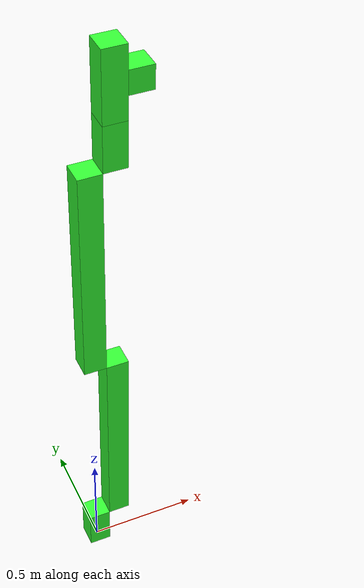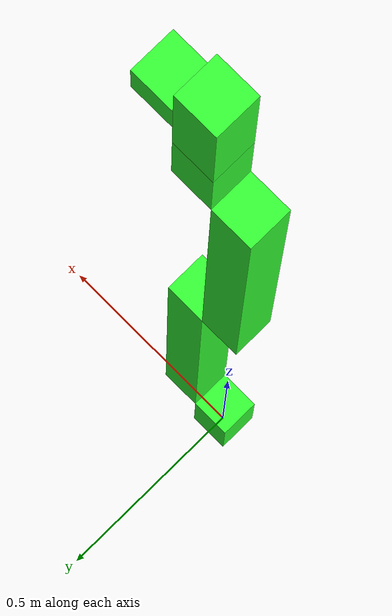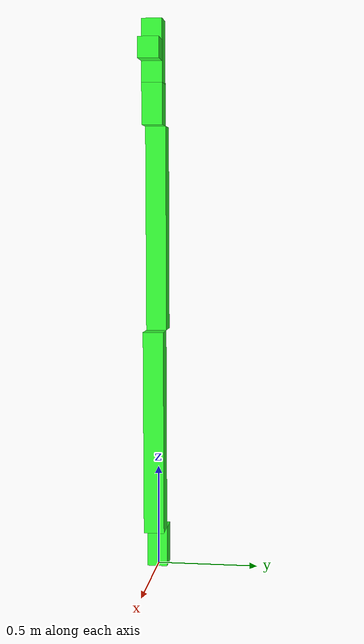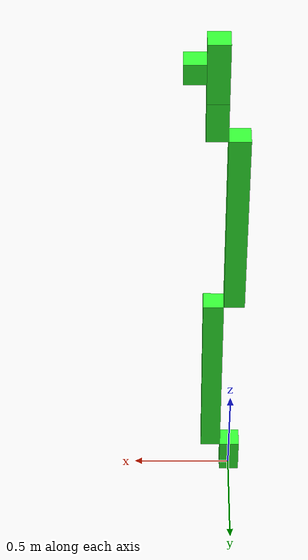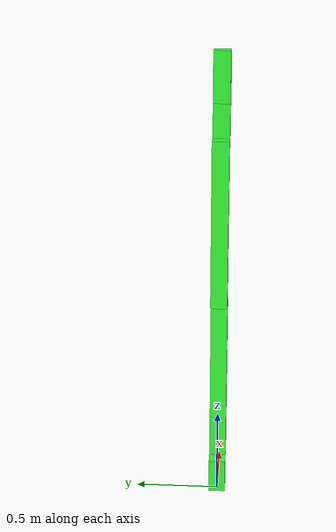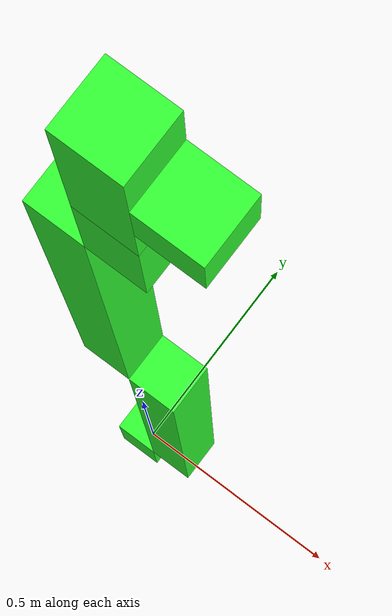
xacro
<?xml version="1.0"?>
<robot xmlns:xacro="http://www.ros.org/wiki/xacro"  name="robot">

    <!-- Include macro for creating urdf -->
    <xacro:include filename="robot_basic_urdf.xacro" />

    <!-- Set arguments for macro -->
    <xacro:arg name="robot_name" default=""/>

    <!-- Create link for robot base to connect to -->
    <link name="world"/>

    <!-- Use macro to make urdf -->
    <xacro:create_robot parent="world" robot_name="$(arg robot_name)" />

</robot>

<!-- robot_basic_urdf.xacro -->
<robot xmlns:xacro="http://www.ros.org/wiki/xacro"  name="robot">

    <!-- Constants of the robot dimensions, should be made to variables -->
    <xacro:property name="link_1_length" value="0.2" />
    <xacro:property name="link_1_side" value="0.1" />
    <xacro:property name="link_2_length" value="1" />
    <xacro:property name="link_2_side" value="0.1" />
    <xacro:property name="link_3_length" value="1" />
    <xacro:property name="link_3_side" value="0.1" />
    <xacro:property name="link_4_length" value="0.2" />
    <xacro:property name="link_4_side" value="0.1" />
    <xacro:property name="link_5_length" value="0.3" />
    <xacro:property name="link_5_side" value="0.1" />
    <xacro:property name="link_6_length" value="0.1" />
    <xacro:property name="link_6_side" value="0.1" />
    <!-- Constants of the robot -->
    <xacro:property name="joint_damping" value="10.0"/>
    <xacro:property name="joint_friction" value="0.1"/>
    <xacro:property name="max_effort" value="300"/>
    <xacro:property name="max_velocity" value="10"/>

    <!-- Includes -->
    <xacro:include filename="robot_materials.xacro" />
    <xacro:include filename="robot_inertia_functions.xacro" />
    <xacro:include filename="robot.gazebo.xacro" />
    <xacro:include filename="robot.ros2_control.xacro" />

    <!-- macro for create URDF -->
    <xacro:macro name="create_robot" params="parent:=|world robot_name:=^|robot">

        <!-- Joint between parent and base link -->
        <joint name="${parent}_${robot_name}_joint" type="fixed">
            <parent link="${parent}"/>
            <child link="${robot_name}_link_0"/>
        </joint>

        <!-- Joints in the robot -->
        <joint name="${robot_name}_joint_1" type="revolute">
            <origin xyz="0 0 0" rpy="0 0 0"/>
            <parent link="${robot_name}_link_0"/>
            <child link="${robot_name}_link_1"/>
            <axis xyz="0 0 1"/>
            <limit lower="${-pi}" upper="${pi}" velocity="${max_velocity}" effort="${max_effort}"/>
            <dynamics damping="${joint_damping}" friction="${joint_friction}"/>
        </joint>

        <joint name="${robot_name}_joint_2" type="revolute">
            <origin xyz="${(link_2_side/2)+(link_1_side/2)} 0 ${link_1_length}" rpy="0 0 0"/>
            <parent link="${robot_name}_link_1"/>
            <child link="${robot_name}_link_2"/>
            <axis xyz="1 0 0"/>
            <limit lower="${-pi}" upper="${pi}" velocity="${max_velocity}" effort="${max_effort}"/>
            <dynamics damping="${joint_damping}" friction="${joint_friction}"/>
        </joint>

        <joint name="${robot_name}_joint_3" type="revolute">
            <origin xyz="${-((link_3_side/2)+(link_2_side/2))} 0 ${link_2_length}" rpy="0 0 0"/>
            <parent link="${robot_name}_link_2"/>
            <child link="${robot_name}_link_3"/>
            <axis xyz="1 0 0"/>
            <limit lower="${-pi}" upper="${pi}" velocity="${max_velocity}" effort="${max_effort}"/>
            <dynamics damping="${joint_damping}" friction="${joint_friction}"/>
        </joint>

        <joint name="${robot_name}_joint_4" type="revolute">
            <origin xyz="${(link_4_side/2)+(link_3_side/2)} 0 ${link_3_length}" rpy="0 0 0"/>
            <parent link="${robot_name}_link_3"/>
            <child link="${robot_name}_link_4"/>
            <axis xyz="1 0 0"/>
            <limit lower="${-pi}" upper="${pi}" velocity="${max_velocity}" effort="${max_effort}"/>
            <dynamics damping="${joint_damping}" friction="${joint_friction}"/>
        </joint>

        <joint name="${robot_name}_joint_5" type="revolute">
            <origin xyz="0 0 ${link_4_length}" rpy="0 0 0"/>
            <parent link="${robot_name}_link_4"/>
            <child link="${robot_name}_link_5"/>
            <axis xyz="0 0 1"/>
            <limit lower="${-pi}" upper="${pi}" velocity="${max_velocity}" effort="${max_effort}"/>
            <dynamics damping="${joint_damping}" friction="${joint_friction}"/>
        </joint>

        <joint name="${robot_name}_joint_6" type="revolute">
            <origin xyz="${link_5_side/2} 0 ${link_5_length / 2}" rpy="0 0 0"/>
            <parent link="${robot_name}_link_5"/>
            <child link="${robot_name}_link_6"/>
            <axis xyz="1 0 0"/>
            <limit lower="${-pi}" upper="${pi}" velocity="${max_velocity}" effort="${max_effort}"/>
            <dynamics damping="${joint_damping}" friction="${joint_friction}"/>
        </joint>

        <!-- Links in the robot -->
        <link name="${robot_name}_link_0"></link>

        <link name="${robot_name}_link_1">
            <visual>
                <origin xyz="0 0 ${link_1_length / 2}" rpy="0 0 0" />
                <geometry>
                    <box size="${link_1_side} ${link_1_side} ${link_1_length}" />
                </geometry>
                <material name="green" />
            </visual>
            <collision>
                <origin xyz="0 0 ${link_1_length / 2}" rpy="0 0 0" />
                <geometry>
                    <box size="${link_1_side} ${link_1_side} ${link_1_length}" />
                </geometry>
            </collision>
            <xacro:inertial_box mass="0.1" x="${link_1_side}" y="${link_1_side}" z="${link_1_length}">
                <origin xyz="0 0 ${link_1_side/2}" rpy="0 0 0"/>
            </xacro:inertial_box>
        </link>

        <link name="${robot_name}_link_2">
            <visual>
                <origin xyz="0 0 ${link_2_length / 2}" rpy="0 0 0" />
                <geometry>
                    <box size="${link_2_side} ${link_2_side} ${link_2_length}" />
                </geometry>
                <material name="green" />
            </visual>
            <collision>
                <origin xyz="0 0 ${link_2_length / 2}" rpy="0 0 0" />
                <geometry>
                    <box size="${link_2_side} ${link_2_side} ${link_2_length}" />
                </geometry>
            </collision>
            <xacro:inertial_box mass="0.1" x="${link_2_side}" y="${link_2_side}" z="${link_2_length}">
                <origin xyz="0 0 ${link_2_side/2}" rpy="0 0 0"/>
            </xacro:inertial_box>
        </link>

        <link name="${robot_name}_link_3">
            <visual>
                <origin xyz="0 0 ${link_3_length / 2}" rpy="0 0 0" />
                <geometry>
                    <box size="${link_3_side} ${link_3_side} ${link_3_length}" />
                </geometry>
                <material name="green" />
            </visual>
            <collision>
                <origin xyz="0 0 ${link_3_length / 2}" rpy="0 0 0" />
                <geometry>
                    <box size="${link_3_side} ${link_3_side} ${link_3_length}" />
                </geometry>
            </collision>
            <xacro:inertial_box mass="0.1" x="${link_3_side}" y="${link_3_side}" z="${link_3_length}">
                <origin xyz="0 0 ${link_3_side/2}" rpy="0 0 0"/>
            </xacro:inertial_box>
        </link>

        <link name="${robot_name}_link_4">
            <visual>
                <origin xyz="0 0 ${link_4_length / 2}" rpy="0 0 0" />
                <geometry>
                    <box size="${link_4_side} ${link_4_side} ${link_4_length}" />
                </geometry>
                <material name="green" />
            </visual>
            <collision>
                <origin xyz="0 0 ${link_4_length / 2}" rpy="0 0 0" />
                <geometry>
                    <box size="${link_4_side} ${link_1_side} ${link_4_length}" />
                </geometry>
            </collision>
            <xacro:inertial_box mass="0.1" x="${link_1_side}" y="${link_4_side}" z="${link_4_length}">
                <origin xyz="0 0 ${link_4_side/2}" rpy="0 0 0"/>
            </xacro:inertial_box>
        </link>

        <link name="${robot_name}_link_5">
            <visual>
                <origin xyz="0 0 ${link_5_length / 2}" rpy="0 0 0" />
                <geometry>
                    <box size="${link_5_side} ${link_5_side} ${link_5_length}" />
                </geometry>
                <material name="green" />
            </visual>
            <collision>
                <origin xyz="0 0 ${link_5_length / 2}" rpy="0 0 0" />
                <geometry>
                    <box size="${link_5_side} ${link_5_side} ${link_5_length}" />
                </geometry>
            </collision>
            <xacro:inertial_box mass="0.1" x="${link_5_side}" y="${link_5_side}" z="${link_5_length}">
                <origin xyz="0 0 ${link_5_side/2}" rpy="0 0 0"/>
            </xacro:inertial_box>
        </link>

        <link name="${robot_name}_link_6">
            <visual>
                <origin xyz="${link_6_length / 2} 0 0" rpy="0 0 0" />
                <geometry>
                    <box size="${link_6_length} ${link_6_side} ${link_6_side}" />
                </geometry>
                <material name="green" />
            </visual>
            <collision>
                <origin xyz="${link_6_length / 2} 0 0" rpy="0 0 0" />
                <geometry>
                    <box size="${link_6_length} ${link_6_side} ${link_6_side}" />
                </geometry>
            </collision>
            <xacro:inertial_box mass="0.1" x="${link_6_length}" y="${link_6_side}" z="${link_6_side}">
                <origin xyz="${link_6_length / 2} 0 0" rpy="0 0 0"/>
            </xacro:inertial_box>
        </link>

        <!-- gazebo plugin from xacro file -->
        <xacro:robot_gazebo robot_name="${robot_name}"/>
        <xacro:robot_hardware_interface robot_name="${robot_name}"/>
    </xacro:macro>

</robot>

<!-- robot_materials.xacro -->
<robot xmlns:xacro="http://www.ros.org/wiki/xacro" >
    <material name="white">
        <color rgba="1 1 1 1"/>
    </material>

    <material name="orange">
        <color rgba="1 0.3 0.1 1"/>
    </material>

    <material name="blue">
        <color rgba="0.2 0.2 1 1"/>
    </material>

    <material name="green">
        <color rgba="0.2 1 0.2 1"/>
    </material>
</robot>

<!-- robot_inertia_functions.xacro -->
<robot xmlns:xacro="http://www.ros.org/wiki/xacro" >

    <xacro:macro name="inertial_sphere" params="mass radius *origin">
        <inertial>
            <xacro:insert_block name="origin"/>
            <mass value="${mass}" />
            <inertia ixx="${(2/5) * mass * (radius*radius)}" ixy="0.0" ixz="0.0"
                    iyy="${(2/5) * mass * (radius*radius)}" iyz="0.0"
                    izz="${(2/5) * mass * (radius*radius)}" />
        </inertial>
    </xacro:macro>

    <xacro:macro name="inertial_box" params="mass x y z *origin">
        <inertial>
            <xacro:insert_block name="origin"/>
            <mass value="${mass}" />
            <inertia ixx="${(1/12) * mass * (y*y+z*z)}" ixy="0.0" ixz="0.0"
                    iyy="${(1/12) * mass * (x*x+z*z)}" iyz="0.0"
                    izz="${(1/12) * mass * (x*x+y*y)}" />
        </inertial>
    </xacro:macro>

    <xacro:macro name="inertial_cylinder" params="mass length radius *origin">
        <inertial>
            <xacro:insert_block name="origin"/>
            <mass value="${mass}" />
            <inertia ixx="${(1/12) * mass * (3*radius*radius + length*length)}" ixy="0.0" ixz="0.0"
                    iyy="${(1/12) * mass * (3*radius*radius + length*length)}" iyz="0.0"
                    izz="${(1/2) * mass * (radius*radius)}" />
        </inertial>
    </xacro:macro>

</robot>
